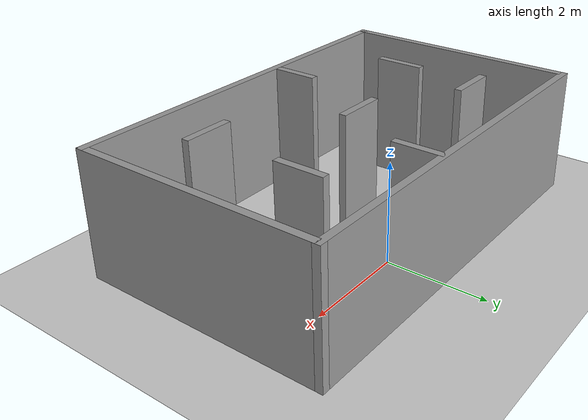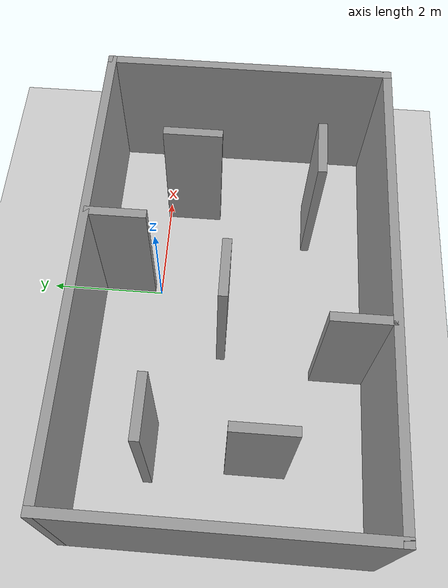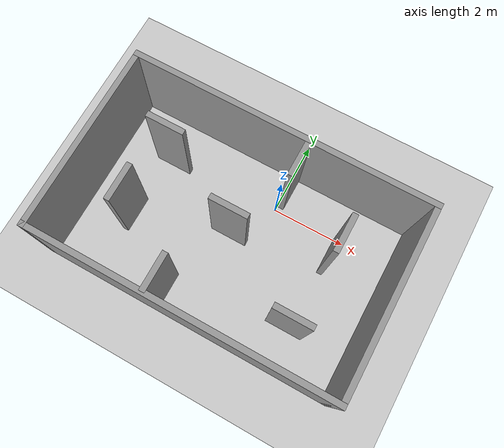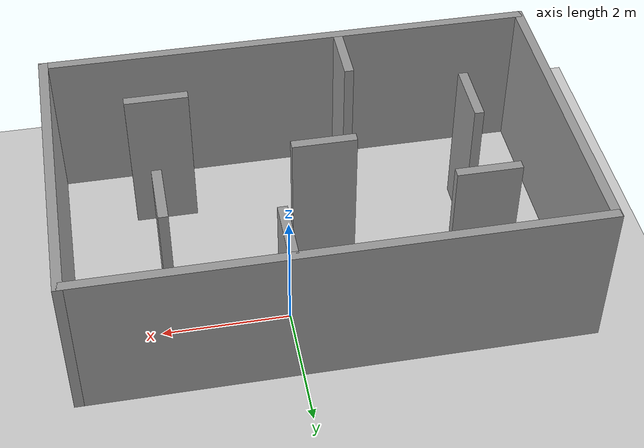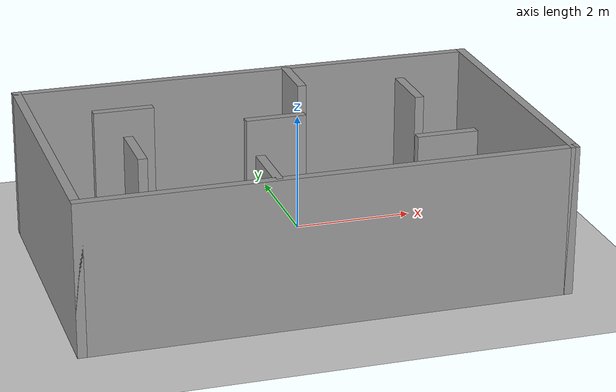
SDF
<sdf version="1.6">
 <world name="default">
  <light name="sun" type="directional">
   <pose>0 0 10 0 -0 0</pose>
   <diffuse>0.8 0.8 0.8 1</diffuse>
   <specular>0.2 0.2 0.2 1</specular>
   <attenuation>
    <range>1000</range>
    <constant>0.9</constant>
    <linear>0.01</linear>
    <quadratic>0.001</quadratic>
   </attenuation>
   <direction>-0.5 0.1 -0.9</direction>
  </light>
  <model name="ground_plane">
   <static>1</static>
   <link name="link">
    <collision name="collision">
     <geometry><plane><normal>0 0 1</normal><size>100 100</size></plane></geometry>
     <surface><friction><ode><mu>100</mu><mu2>50</mu2></ode></friction></surface>
    </collision>
    <visual name="visual">
     <cast_shadows>0</cast_shadows>
     <geometry><plane><normal>0 0 1</normal><size>100 100</size></plane></geometry>
     <material>
      <script><uri>file://media/materials/scripts/gazebo.material</uri><name>Gazebo/Grey</name></script>
     </material>
    </visual>
   </link>
  </model>
  <gravity>0 0 -9.8</gravity>
  <magnetic_field>6e-06 2.3e-05 -4.2e-05</magnetic_field>
  <atmosphere type="adiabatic"/>
  <physics name="default_physics" default="0" type="ode">
   <max_step_size>0.001</max_step_size>
   <real_time_factor>1</real_time_factor>
   <real_time_update_rate>1000</real_time_update_rate>
  </physics>
  <scene><ambient>0.4 0.4 0.4 1</ambient><background>0.7 0.7 0.7 1</background><shadows>1</shadows></scene>
  <audio><device>default</device></audio>
  <spherical_coordinates>
   <surface_model>EARTH_WGS84</surface_model>
   <latitude_deg>0</latitude_deg>
   <longitude_deg>0</longitude_deg>
   <elevation>0</elevation>
   <heading_deg>0</heading_deg>
  </spherical_coordinates>
  <model name="Untitled">
   <pose>-0.595314 -1.32693 0 0 -0 0</pose>
   <link name="Wall_14">
    <collision name="Wall_14_Collision">
     <geometry><box><size>8 0.15 2.5</size></box></geometry>
     <pose>0 0 1.25 0 -0 0</pose>
    </collision>
    <visual name="Wall_14_Visual">
     <pose>0 0 1.25 0 -0 0</pose>
     <geometry><box><size>8 0.15 2.5</size></box></geometry>
     <material>
      <script><uri>file://media/materials/scripts/gazebo.material</uri><name>Gazebo/Grey</name></script>
      <ambient>1 1 1 1</ambient>
     </material>
     <meta><layer>0</layer></meta>
    </visual>
    <pose>0 -2.425 0 0 -0 0</pose>
   </link>
   <link name="Wall_15">
    <collision name="Wall_15_Collision">
     <geometry><box><size>5 0.15 2.5</size></box></geometry>
     <pose>0 0 1.25 0 -0 0</pose>
    </collision>
    <visual name="Wall_15_Visual">
     <pose>0 0 1.25 0 -0 0</pose>
     <geometry><box><size>5 0.15 2.5</size></box></geometry>
     <material>
      <script><uri>file://media/materials/scripts/gazebo.material</uri><name>Gazebo/Grey</name></script>
      <ambient>1 1 1 1</ambient>
     </material>
     <meta><layer>0</layer></meta>
    </visual>
    <pose>3.925 0 0 0 -0 1.5708</pose>
   </link>
   <link name="Wall_16">
    <collision name="Wall_16_Collision">
     <geometry><box><size>8 0.15 2.5</size></box></geometry>
     <pose>0 0 1.25 0 -0 0</pose>
    </collision>
    <visual name="Wall_16_Visual">
     <pose>0 0 1.25 0 -0 0</pose>
     <geometry><box><size>8 0.15 2.5</size></box></geometry>
     <material>
      <script><uri>file://media/materials/scripts/gazebo.material</uri><name>Gazebo/Grey</name></script>
      <ambient>1 1 1 1</ambient>
     </material>
     <meta><layer>0</layer></meta>
    </visual>
    <pose>0 2.425 0 0 -0 3.14159</pose>
   </link>
   <link name="Wall_17">
    <collision name="Wall_17_Collision">
     <geometry><box><size>5 0.15 2.5</size></box></geometry>
     <pose>0 0 1.25 0 -0 0</pose>
    </collision>
    <visual name="Wall_17_Visual">
     <pose>0 0 1.25 0 -0 0</pose>
     <geometry><box><size>5 0.15 2.5</size></box></geometry>
     <material>
      <script><uri>file://media/materials/scripts/gazebo.material</uri><name>Gazebo/Grey</name></script>
      <ambient>1 1 1 1</ambient>
     </material>
     <meta><layer>0</layer></meta>
    </visual>
    <pose>-3.925 0 0 0 -0 -1.5708</pose>
   </link>
   <link name="Wall_19">
    <collision name="Wall_19_Collision">
     <geometry><box><size>1 0.15 2.5</size></box></geometry>
     <pose>0 0 1.25 0 -0 0</pose>
    </collision>
    <visual name="Wall_19_Visual">
     <pose>0 0 1.25 0 -0 0</pose>
     <geometry><box><size>1 0.15 2.5</size></box></geometry>
     <material>
      <script><uri>file://media/materials/scripts/gazebo.material</uri><name>Gazebo/Grey</name></script>
      <ambient>1 1 1 1</ambient>
     </material>
     <meta><layer>0</layer></meta>
    </visual>
    <pose>0.704293 1.94092 0 0 -0 -1.5708</pose>
   </link>
   <link name="Wall_21">
    <collision name="Wall_21_Collision">
     <geometry><box><size>1 0.15 2.5</size></box></geometry>
     <pose>0 0 1.25 0 -0 0</pose>
    </collision>
    <visual name="Wall_21_Visual">
     <pose>0 0 1.25 0 -0 0</pose>
     <geometry><box><size>1 0.15 2.5</size></box></geometry>
     <material>
      <script><uri>file://media/materials/scripts/gazebo.material</uri><name>Gazebo/Grey</name></script>
      <ambient>1 1 1 1</ambient>
     </material>
     <meta><layer>0</layer></meta>
    </visual>
    <pose>-0.845457 -1.92772 0 0 -0 1.5708</pose>
   </link>
   <link name="Wall_23">
    <collision name="Wall_23_Collision">
     <geometry><box><size>1 0.15 2.5</size></box></geometry>
     <pose>0 0 1.25 0 -0 0</pose>
    </collision>
    <visual name="Wall_23_Visual">
     <pose>0 0 1.25 0 -0 0</pose>
     <geometry><box><size>1 0.15 2.5</size></box></geometry>
     <material>
      <script><uri>file://media/materials/scripts/gazebo.material</uri><name>Gazebo/Grey</name></script>
      <ambient>1 1 1 1</ambient>
     </material>
     <meta><layer>0</layer></meta>
    </visual>
    <pose>-0.14289 0.145384 0 0 -0 0</pose>
   </link>
   <link name="Wall_25">
    <collision name="Wall_25_Collision">
     <geometry><box><size>1 0.15 2.5</size></box></geometry>
     <pose>0 0 1.25 0 -0 0</pose>
    </collision>
    <visual name="Wall_25_Visual">
     <pose>0 0 1.25 0 -0 0</pose>
     <geometry><box><size>1 0.15 2.5</size></box></geometry>
     <material>
      <script><uri>file://media/materials/scripts/gazebo.material</uri><name>Gazebo/Grey</name></script>
      <ambient>1 1 1 1</ambient>
     </material>
     <meta><layer>0</layer></meta>
    </visual>
    <pose>2.39283 0.853784 0 0 -0 -1.5708</pose>
   </link>
   <link name="Wall_27">
    <collision name="Wall_27_Collision">
     <geometry><box><size>1 0.15 2.5</size></box></geometry>
     <pose>0 0 1.25 0 -0 0</pose>
    </collision>
    <visual name="Wall_27_Visual">
     <pose>0 0 1.25 0 -0 0</pose>
     <geometry><box><size>1 0.15 2.5</size></box></geometry>
     <material>
      <script><uri>file://media/materials/scripts/gazebo.material</uri><name>Gazebo/Grey</name></script>
      <ambient>1 1 1 1</ambient>
     </material>
     <meta><layer>0</layer></meta>
    </visual>
    <pose>2.23956 -1.31184 0 0 -0 0</pose>
   </link>
   <link name="Wall_29">
    <collision name="Wall_29_Collision">
     <geometry><box><size>1 0.15 2.5</size></box></geometry>
     <pose>0 0 1.25 0 -0 0</pose>
    </collision>
    <visual name="Wall_29_Visual">
     <pose>0 0 1.25 0 -0 0</pose>
     <geometry><box><size>1 0.15 2.5</size></box></geometry>
     <material>
      <script><uri>file://media/materials/scripts/gazebo.material</uri><name>Gazebo/Grey</name></script>
      <ambient>1 1 1 1</ambient>
     </material>
     <meta><layer>0</layer></meta>
    </visual>
    <pose>-2.40969 1.18626 0 0 -0 0</pose>
   </link>
   <link name="Wall_31">
    <collision name="Wall_31_Collision">
     <geometry><box><size>1 0.15 2.5</size></box></geometry>
     <pose>0 0 1.25 0 -0 0</pose>
    </collision>
    <visual name="Wall_31_Visual">
     <pose>0 0 1.25 0 -0 0</pose>
     <geometry><box><size>1 0.15 2.5</size></box></geometry>
     <material>
      <script><uri>file://media/materials/scripts/gazebo.material</uri><name>Gazebo/Grey</name></script>
      <ambient>1 1 1 1</ambient>
     </material>
     <meta><layer>0</layer></meta>
    </visual>
    <pose>-2.60338 -0.557184 0 0 -0 -1.5708</pose>
   </link>
   <static>1</static>
  </model>
 </world>
</sdf>
